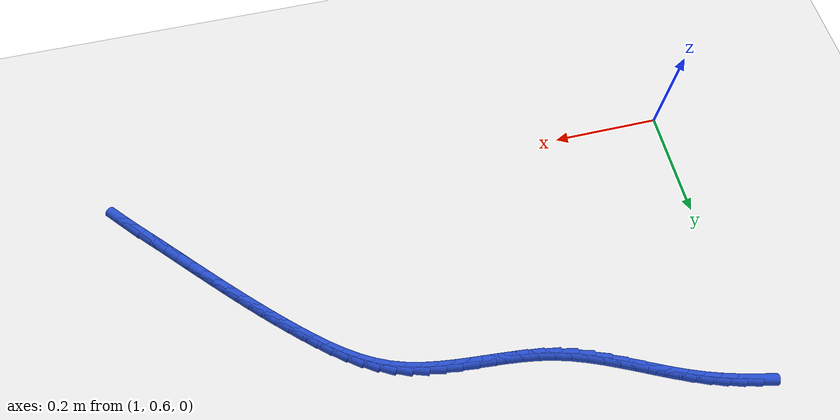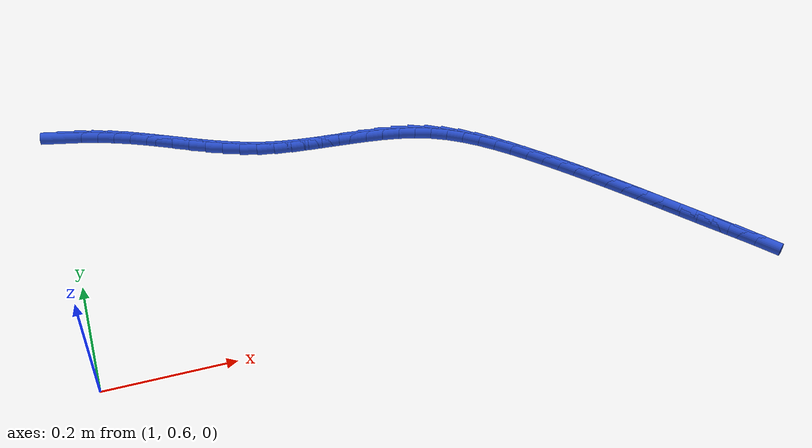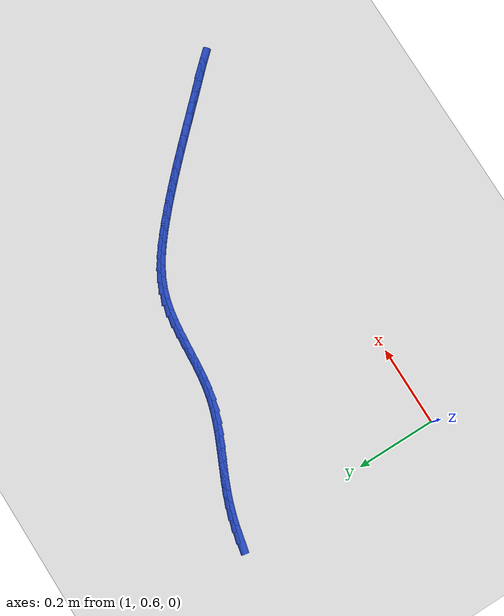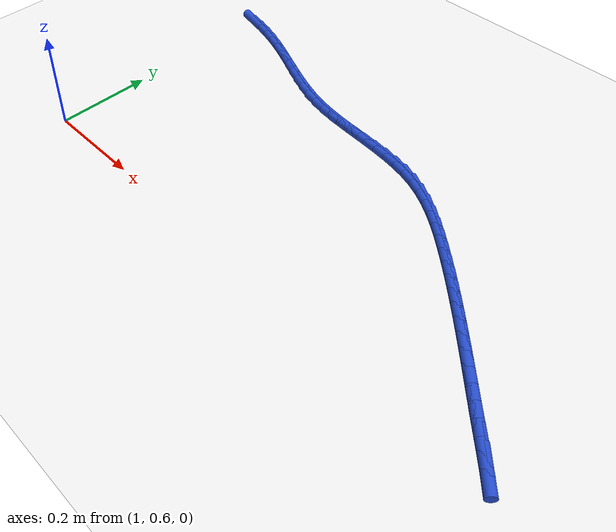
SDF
<sdf version="1.6">
 <world name="default">
  <model name="ground_plane">
   <static>1</static>
   <link name="link">
    <collision name="collision">
     <geometry><plane><normal>0 0 1</normal><size>100 100</size></plane></geometry>
     <surface><friction><ode><mu>100</mu><mu2>50</mu2></ode></friction></surface>
    </collision>
    <visual name="visual">
     <cast_shadows>0</cast_shadows>
     <geometry><plane><normal>0 0 1</normal><size>100 100</size></plane></geometry>
     <material>
      <script><uri>file://media/materials/scripts/gazebo.material</uri><name>Gazebo/WhiteGlow</name></script>
     </material>
    </visual>
   </link>
  </model>
  <model name="line">
   <link name="link_61">
    <pose>1.0137318240884738 1.1255448028093875 0.01 0 1.57 -0.2215263073344703</pose>
    <collision name="collision">
     <geometry><cylinder><radius>0.01</radius><length>0.08</length></cylinder></geometry>
    </collision>
    <visual name="visual">
     <material>
      <script><name>Gazebo/Blue</name><uri>file://media/materials/scripts/gazebo.material</uri></script>
     </material>
     <geometry><cylinder><radius>0.01</radius><length>0.08</length></cylinder></geometry>
    </visual>
   </link>
   <link name="link_62">
    <pose>1.0408444886149748 1.119438417977469 0.01 0 1.57 -0.26877016621185135</pose>
    <collision name="collision">
     <geometry><cylinder><radius>0.01</radius><length>0.08</length></cylinder></geometry>
    </collision>
    <visual name="visual">
     <material>
      <script><name>Gazebo/Blue</name><uri>file://media/materials/scripts/gazebo.material</uri></script>
     </material>
     <geometry><cylinder><radius>0.01</radius><length>0.08</length></cylinder></geometry>
    </visual>
   </link>
   <link name="link_63">
    <pose>1.0675674525722323 1.1120779903524673 0.01 0 1.57 -0.31479889620635837</pose>
    <collision name="collision">
     <geometry><cylinder><radius>0.01</radius><length>0.08</length></cylinder></geometry>
    </collision>
    <visual name="visual">
     <material>
      <script><name>Gazebo/Blue</name><uri>file://media/materials/scripts/gazebo.material</uri></script>
     </material>
     <geometry><cylinder><radius>0.01</radius><length>0.08</length></cylinder></geometry>
    </visual>
   </link>
   <link name="link_64">
    <pose>1.0939369457991517 1.1034913713339898 0.01 0 1.57 -0.35920142715494563</pose>
    <collision name="collision">
     <geometry><cylinder><radius>0.01</radius><length>0.08</length></cylinder></geometry>
    </collision>
    <visual name="visual">
     <material>
      <script><name>Gazebo/Blue</name><uri>file://media/materials/scripts/gazebo.material</uri></script>
     </material>
     <geometry><cylinder><radius>0.01</radius><length>0.08</length></cylinder></geometry>
    </visual>
   </link>
   <link name="link_65">
    <pose>1.1199896726734568 1.0937087961470224 0.01 0 1.57 -0.39693983732204374</pose>
    <collision name="collision">
     <geometry><cylinder><radius>0.01</radius><length>0.08</length></cylinder></geometry>
    </collision>
    <visual name="visual">
     <material>
      <script><name>Gazebo/Blue</name><uri>file://media/materials/scripts/gazebo.material</uri></script>
     </material>
     <geometry><cylinder><radius>0.01</radius><length>0.08</length></cylinder></geometry>
    </visual>
   </link>
   <link name="link_66">
    <pose>1.1457889119491418 1.0828939952546732 0.01 0 1.57 -0.420892536509313</pose>
    <collision name="collision">
     <geometry><cylinder><radius>0.01</radius><length>0.08</length></cylinder></geometry>
    </collision>
    <visual name="visual">
     <material>
      <script><name>Gazebo/Blue</name><uri>file://media/materials/scripts/gazebo.material</uri></script>
     </material>
     <geometry><cylinder><radius>0.01</radius><length>0.08</length></cylinder></geometry>
    </visual>
   </link>
   <link name="link_67">
    <pose>1.1714380768957648 1.0714123131356583 0.01 0 1.57 -0.430745317962416</pose>
    <collision name="collision">
     <geometry><cylinder><radius>0.01</radius><length>0.08</length></cylinder></geometry>
    </collision>
    <visual name="visual">
     <material>
      <script><name>Gazebo/Blue</name><uri>file://media/materials/scripts/gazebo.material</uri></script>
     </material>
     <geometry><cylinder><radius>0.01</radius><length>0.08</length></cylinder></geometry>
    </visual>
   </link>
   <link name="link_68">
    <pose>1.197043912701138 1.0596458320169777 0.01 0 1.57 -0.42667127711675795</pose>
    <collision name="collision">
     <geometry><cylinder><radius>0.01</radius><length>0.08</length></cylinder></geometry>
    </collision>
    <visual name="visual">
     <material>
      <script><name>Gazebo/Blue</name><uri>file://media/materials/scripts/gazebo.material</uri></script>
     </material>
     <geometry><cylinder><radius>0.01</radius><length>0.08</length></cylinder></geometry>
    </visual>
   </link>
   <link name="link_69">
    <pose>1.2227131645530749 1.047976634125632 0.01 0 1.57 -0.4086716947445242</pose>
    <collision name="collision">
     <geometry><cylinder><radius>0.01</radius><length>0.08</length></cylinder></geometry>
    </collision>
    <visual name="visual">
     <material>
      <script><name>Gazebo/Blue</name><uri>file://media/materials/scripts/gazebo.material</uri></script>
     </material>
     <geometry><cylinder><radius>0.01</radius><length>0.08</length></cylinder></geometry>
    </visual>
   </link>
   <link name="link_70">
    <pose>1.248552577639388 1.0367868016886217 0.01 0 1.57 -0.3766005412703607</pose>
    <collision name="collision">
     <geometry><cylinder><radius>0.01</radius><length>0.08</length></cylinder></geometry>
    </collision>
    <visual name="visual">
     <material>
      <script><name>Gazebo/Blue</name><uri>file://media/materials/scripts/gazebo.material</uri></script>
     </material>
     <geometry><cylinder><radius>0.01</radius><length>0.08</length></cylinder></geometry>
    </visual>
   </link>
   <link name="link_71">
    <pose>1.2746688971478892 1.026458416932946 0.01 0 1.57 -0.3302686686060403</pose>
    <collision name="collision">
     <geometry><cylinder><radius>0.01</radius><length>0.08</length></cylinder></geometry>
    </collision>
    <visual name="visual">
     <material>
      <script><name>Gazebo/Blue</name><uri>file://media/materials/scripts/gazebo.material</uri></script>
     </material>
     <geometry><cylinder><radius>0.01</radius><length>0.08</length></cylinder></geometry>
    </visual>
   </link>
   <link name="link_72">
    <pose>1.301168868266392 1.017373562085606 0.01 0 1.57 -0.26963650728713723</pose>
    <collision name="collision">
     <geometry><cylinder><radius>0.01</radius><length>0.08</length></cylinder></geometry>
    </collision>
    <visual name="visual">
     <material>
      <script><name>Gazebo/Blue</name><uri>file://media/materials/scripts/gazebo.material</uri></script>
     </material>
     <geometry><cylinder><radius>0.01</radius><length>0.08</length></cylinder></geometry>
    </visual>
   </link>
   <link name="link_73">
    <pose>1.3281592361827086 1.0099143193736018 0.01 0 1.57 -0.20021347893387959</pose>
    <collision name="collision">
     <geometry><cylinder><radius>0.01</radius><length>0.08</length></cylinder></geometry>
    </collision>
    <visual name="visual">
     <material>
      <script><name>Gazebo/Blue</name><uri>file://media/materials/scripts/gazebo.material</uri></script>
     </material>
     <geometry><cylinder><radius>0.01</radius><length>0.08</length></cylinder></geometry>
    </visual>
   </link>
   <link name="link_74">
    <pose>1.3557046515025295 1.004324464992871 0.01 0 1.57 -0.14340314209981983</pose>
    <collision name="collision">
     <geometry><cylinder><radius>0.01</radius><length>0.08</length></cylinder></geometry>
    </collision>
    <visual name="visual">
     <material>
      <script><name>Gazebo/Blue</name><uri>file://media/materials/scripts/gazebo.material</uri></script>
     </material>
     <geometry><cylinder><radius>0.01</radius><length>0.08</length></cylinder></geometry>
    </visual>
   </link>
   <link name="link_75">
    <pose>1.3836976970121337 1.0002824288174226 0.01 0 1.57 -0.1042615870564046</pose>
    <collision name="collision">
     <geometry><cylinder><radius>0.01</radius><length>0.08</length></cylinder></geometry>
    </collision>
    <visual name="visual">
     <material>
      <script><name>Gazebo/Blue</name><uri>file://media/materials/scripts/gazebo.material</uri></script>
     </material>
     <geometry><cylinder><radius>0.01</radius><length>0.08</length></cylinder></geometry>
    </visual>
   </link>
   <link name="link_76">
    <pose>1.411986996048947 0.9973222074808779 0.01 0 1.57 -0.08226434981564956</pose>
    <collision name="collision">
     <geometry><cylinder><radius>0.01</radius><length>0.08</length></cylinder></geometry>
    </collision>
    <visual name="visual">
     <material>
      <script><name>Gazebo/Blue</name><uri>file://media/materials/scripts/gazebo.material</uri></script>
     </material>
     <geometry><cylinder><radius>0.01</radius><length>0.08</length></cylinder></geometry>
    </visual>
   </link>
   <link name="link_77">
    <pose>1.4404211719341693 0.9949777975635512 0.01 0 1.57 -0.07704666643448888</pose>
    <collision name="collision">
     <geometry><cylinder><radius>0.01</radius><length>0.08</length></cylinder></geometry>
    </collision>
    <visual name="visual">
     <material>
      <script><name>Gazebo/Blue</name><uri>file://media/materials/scripts/gazebo.material</uri></script>
     </material>
     <geometry><cylinder><radius>0.01</radius><length>0.08</length></cylinder></geometry>
    </visual>
   </link>
   <link name="link_78">
    <pose>1.4688488479890012 0.9927831956457573 0.01 0 1.57 -0.08858310139092127</pose>
    <collision name="collision">
     <geometry><cylinder><radius>0.01</radius><length>0.08</length></cylinder></geometry>
    </collision>
    <visual name="visual">
     <material>
      <script><name>Gazebo/Blue</name><uri>file://media/materials/scripts/gazebo.material</uri></script>
     </material>
     <geometry><cylinder><radius>0.01</radius><length>0.08</length></cylinder></geometry>
    </visual>
   </link>
   <link name="link_79">
    <pose>1.4971186475346436 0.9902723983078104 0.01 0 1.57 -0.1172329205561936</pose>
    <collision name="collision">
     <geometry><cylinder><radius>0.01</radius><length>0.08</length></cylinder></geometry>
    </collision>
    <visual name="visual">
     <material>
      <script><name>Gazebo/Blue</name><uri>file://media/materials/scripts/gazebo.material</uri></script>
     </material>
     <geometry><cylinder><radius>0.01</radius><length>0.08</length></cylinder></geometry>
    </visual>
   </link>
   <link name="link_80">
    <pose>1.525079193892298 0.9869794021300259 0.01 0 1.57 -0.16365802836264334</pose>
    <collision name="collision">
     <geometry><cylinder><radius>0.01</radius><length>0.08</length></cylinder></geometry>
    </collision>
    <visual name="visual">
     <material>
      <script><name>Gazebo/Blue</name><uri>file://media/materials/scripts/gazebo.material</uri></script>
     </material>
     <geometry><cylinder><radius>0.01</radius><length>0.08</length></cylinder></geometry>
    </visual>
   </link>
   <link name="link_81">
    <pose>1.5525791103831634 0.9824382036927174 0.01 0 1.57 -0.2285813809524016</pose>
    <collision name="collision">
     <geometry><cylinder><radius>0.01</radius><length>0.08</length></cylinder></geometry>
    </collision>
    <visual name="visual">
     <material>
      <script><name>Gazebo/Blue</name><uri>file://media/materials/scripts/gazebo.material</uri></script>
     </material>
     <geometry><cylinder><radius>0.01</radius><length>0.08</length></cylinder></geometry>
    </visual>
   </link>
   <link name="link_82">
    <pose>1.5794670203284418 0.9761827995761999 0.01 0 1.57 -0.3123314726011857</pose>
    <collision name="collision">
     <geometry><cylinder><radius>0.01</radius><length>0.08</length></cylinder></geometry>
    </collision>
    <visual name="visual">
     <material>
      <script><name>Gazebo/Blue</name><uri>file://media/materials/scripts/gazebo.material</uri></script>
     </material>
     <geometry><cylinder><radius>0.01</radius><length>0.08</length></cylinder></geometry>
    </visual>
   </link>
   <link name="link_83">
    <pose>1.6055915470493338 0.967747186360788 0.01 0 1.57 -0.4108900697118907</pose>
    <collision name="collision">
     <geometry><cylinder><radius>0.01</radius><length>0.08</length></cylinder></geometry>
    </collision>
    <visual name="visual">
     <material>
      <script><name>Gazebo/Blue</name><uri>file://media/materials/scripts/gazebo.material</uri></script>
     </material>
     <geometry><cylinder><radius>0.01</radius><length>0.08</length></cylinder></geometry>
    </visual>
   </link>
   <link name="link_84">
    <pose>1.6308242399019675 0.956753558900686 0.01 0 1.57 -0.5016200299486727</pose>
    <collision name="collision">
     <geometry><cylinder><radius>0.01</radius><length>0.08</length></cylinder></geometry>
    </collision>
    <visual name="visual">
     <material>
      <script><name>Gazebo/Blue</name><uri>file://media/materials/scripts/gazebo.material</uri></script>
     </material>
     <geometry><cylinder><radius>0.01</radius><length>0.08</length></cylinder></geometry>
    </visual>
   </link>
   <link name="link_85">
    <pose>1.6551847936858874 0.9433940393155402 0.01 0 1.57 -0.5760219329005849</pose>
    <collision name="collision">
     <geometry><cylinder><radius>0.01</radius><length>0.08</length></cylinder></geometry>
    </collision>
    <visual name="visual">
     <material>
      <script><name>Gazebo/Blue</name><uri>file://media/materials/scripts/gazebo.material</uri></script>
     </material>
     <geometry><cylinder><radius>0.01</radius><length>0.08</length></cylinder></geometry>
    </visual>
   </link>
   <link name="link_86">
    <pose>1.6787517990551546 0.9280873267464477 0.01 0 1.57 -0.6349180226319622</pose>
    <collision name="collision">
     <geometry><cylinder><radius>0.01</radius><length>0.08</length></cylinder></geometry>
    </collision>
    <visual name="visual">
     <material>
      <script><name>Gazebo/Blue</name><uri>file://media/materials/scripts/gazebo.material</uri></script>
     </material>
     <geometry><cylinder><radius>0.01</radius><length>0.08</length></cylinder></geometry>
    </visual>
   </link>
   <link name="link_87">
    <pose>1.7016039968390235 0.9112526980703763 0.01 0 1.57 -0.6793993611296293</pose>
    <collision name="collision">
     <geometry><cylinder><radius>0.01</radius><length>0.08</length></cylinder></geometry>
    </collision>
    <visual name="visual">
     <material>
      <script><name>Gazebo/Blue</name><uri>file://media/materials/scripts/gazebo.material</uri></script>
     </material>
     <geometry><cylinder><radius>0.01</radius><length>0.08</length></cylinder></geometry>
    </visual>
   </link>
   <link name="link_88">
    <pose>1.7238201278667469 0.8933094301642939 0.01 0 1.57 -0.7104317668136934</pose>
    <collision name="collision">
     <geometry><cylinder><radius>0.01</radius><length>0.08</length></cylinder></geometry>
    </collision>
    <visual name="visual">
     <material>
      <script><name>Gazebo/Blue</name><uri>file://media/materials/scripts/gazebo.material</uri></script>
     </material>
     <geometry><cylinder><radius>0.01</radius><length>0.08</length></cylinder></geometry>
    </visual>
   </link>
   <link name="link_89">
    <pose>1.7454789329675786 0.8746767999051679 0.01 0 1.57 -0.7296650820612394</pose>
    <collision name="collision">
     <geometry><cylinder><radius>0.01</radius><length>0.08</length></cylinder></geometry>
    </collision>
    <visual name="visual">
     <material>
      <script><name>Gazebo/Blue</name><uri>file://media/materials/scripts/gazebo.material</uri></script>
     </material>
     <geometry><cylinder><radius>0.01</radius><length>0.08</length></cylinder></geometry>
    </visual>
   </link>
   <link name="link_90">
    <pose>1.7666571774927593 0.8557367873904757 0.01 0 1.57 -0.7443943366551953</pose>
    <collision name="collision">
     <geometry><cylinder><radius>0.01</radius><length>0.08</length></cylinder></geometry>
    </collision>
    <visual name="visual">
     <material>
      <script><name>Gazebo/Blue</name><uri>file://media/materials/scripts/gazebo.material</uri></script>
     </material>
     <geometry><cylinder><radius>0.01</radius><length>0.08</length></cylinder></geometry>
    </visual>
   </link>
   <link name="link_91">
    <pose>1.7874179106400854 0.8366124134445789 0.01 0 1.57 -0.7575714498391418</pose>
    <collision name="collision">
     <geometry><cylinder><radius>0.01</radius><length>0.08</length></cylinder></geometry>
    </collision>
    <visual name="visual">
     <material>
      <script><name>Gazebo/Blue</name><uri>file://media/materials/scripts/gazebo.material</uri></script>
     </material>
     <geometry><cylinder><radius>0.01</radius><length>0.08</length></cylinder></geometry>
    </visual>
   </link>
   <link name="link_92">
    <pose>1.8078183635787808 0.8173168552351336 0.01 0 1.57 -0.7691316414390849</pose>
    <collision name="collision">
     <geometry><cylinder><radius>0.01</radius><length>0.08</length></cylinder></geometry>
    </collision>
    <visual name="visual">
     <material>
      <script><name>Gazebo/Blue</name><uri>file://media/materials/scripts/gazebo.material</uri></script>
     </material>
     <geometry><cylinder><radius>0.01</radius><length>0.08</length></cylinder></geometry>
    </visual>
   </link>
   <link name="link_93">
    <pose>1.8279157464012625 0.797862892002296 0.01 0 1.57 -0.7790122759932302</pose>
    <collision name="collision">
     <geometry><cylinder><radius>0.01</radius><length>0.08</length></cylinder></geometry>
    </collision>
    <visual name="visual">
     <material>
      <script><name>Gazebo/Blue</name><uri>file://media/materials/scripts/gazebo.material</uri></script>
     </material>
     <geometry><cylinder><radius>0.01</radius><length>0.08</length></cylinder></geometry>
    </visual>
   </link>
   <link name="link_94">
    <pose>1.8477672691999485 0.7782633029862224 0.01 0 1.57 -0.7871639223755819</pose>
    <collision name="collision">
     <geometry><cylinder><radius>0.01</radius><length>0.08</length></cylinder></geometry>
    </collision>
    <visual name="visual">
     <material>
      <script><name>Gazebo/Blue</name><uri>file://media/materials/scripts/gazebo.material</uri></script>
     </material>
     <geometry><cylinder><radius>0.01</radius><length>0.08</length></cylinder></geometry>
    </visual>
   </link>
   <link name="link_95">
    <pose>1.8674301420672548 0.7585308674270691 0.01 0 1.57 -0.7935502872008002</pose>
    <collision name="collision">
     <geometry><cylinder><radius>0.01</radius><length>0.08</length></cylinder></geometry>
    </collision>
    <visual name="visual">
     <material>
      <script><name>Gazebo/Blue</name><uri>file://media/materials/scripts/gazebo.material</uri></script>
     </material>
     <geometry><cylinder><radius>0.01</radius><length>0.08</length></cylinder></geometry>
    </visual>
   </link>
   <link name="link_96">
    <pose>1.886961575095599 0.7386783645649923 0.01 0 1.57 -0.7981480044133765</pose>
    <collision name="collision">
     <geometry><cylinder><radius>0.01</radius><length>0.08</length></cylinder></geometry>
    </collision>
    <visual name="visual">
     <material>
      <script><name>Gazebo/Blue</name><uri>file://media/materials/scripts/gazebo.material</uri></script>
     </material>
     <geometry><cylinder><radius>0.01</radius><length>0.08</length></cylinder></geometry>
    </visual>
   </link>
   <link name="link_97">
    <pose>1.9064187783773987 0.7187185736401482 0.01 0 1.57 -0.8009463255694241</pose>
    <collision name="collision">
     <geometry><cylinder><radius>0.01</radius><length>0.08</length></cylinder></geometry>
    </collision>
    <visual name="visual">
     <material>
      <script><name>Gazebo/Blue</name><uri>file://media/materials/scripts/gazebo.material</uri></script>
     </material>
     <geometry><cylinder><radius>0.01</radius><length>0.08</length></cylinder></geometry>
    </visual>
   </link>
   <link name="link_98">
    <pose>1.92585896200507 0.6986642738926931 0.01 0 1.57 -0.801946748201354</pose>
    <collision name="collision">
     <geometry><cylinder><radius>0.01</radius><length>0.08</length></cylinder></geometry>
    </collision>
    <visual name="visual">
     <material>
      <script><name>Gazebo/Blue</name><uri>file://media/materials/scripts/gazebo.material</uri></script>
     </material>
     <geometry><cylinder><radius>0.01</radius><length>0.08</length></cylinder></geometry>
    </visual>
   </link>
   <link name="link_99">
    <pose>1.94533933607103 0.6785282445627832 0.01 0 1.57 -0.8011626103041968</pose>
    <collision name="collision">
     <geometry><cylinder><radius>0.01</radius><length>0.08</length></cylinder></geometry>
    </collision>
    <visual name="visual">
     <material>
      <script><name>Gazebo/Blue</name><uri>file://media/materials/scripts/gazebo.material</uri></script>
     </material>
     <geometry><cylinder><radius>0.01</radius><length>0.08</length></cylinder></geometry>
    </visual>
   </link>
   <link name="link_100">
    <pose>1.9649171106676961 0.6583232648905747 0.01 0 1.57 -0.7986186685333049</pose>
    <collision name="collision">
     <geometry><cylinder><radius>0.01</radius><length>0.08</length></cylinder></geometry>
    </collision>
    <visual name="visual">
     <material>
      <script><name>Gazebo/Blue</name><uri>file://media/materials/scripts/gazebo.material</uri></script>
     </material>
     <geometry><cylinder><radius>0.01</radius><length>0.08</length></cylinder></geometry>
    </visual>
   </link>
   <link name="link_101">
    <pose>1.9846494958874854 0.6380621141162242 0.01 0 1.57 -0.7950360294420299</pose>
    <collision name="collision">
     <geometry><cylinder><radius>0.01</radius><length>0.08</length></cylinder></geometry>
    </collision>
    <visual name="visual">
     <material>
      <script><name>Gazebo/Blue</name><uri>file://media/materials/scripts/gazebo.material</uri></script>
     </material>
     <geometry><cylinder><radius>0.01</radius><length>0.08</length></cylinder></geometry>
    </visual>
   </link>
   <link name="link_102">
    <pose>2.004573959998709 0.6177498417207652 0.01 0 1.57 -0.8014611791359979</pose>
    <collision name="collision">
     <geometry><cylinder><radius>0.01</radius><length>0.08</length></cylinder></geometry>
    </collision>
    <visual name="visual">
     <material>
      <script><name>Gazebo/Blue</name><uri>file://media/materials/scripts/gazebo.material</uri></script>
     </material>
     <geometry><cylinder><radius>0.01</radius><length>0.08</length></cylinder></geometry>
    </visual>
   </link>
   <link name="link_103">
    <pose>2.0244093614316863 0.597266747957985 0.01 0 1.57 -0.8269647117988213</pose>
    <collision name="collision">
     <geometry><cylinder><radius>0.01</radius><length>0.08</length></cylinder></geometry>
    </collision>
    <visual name="visual">
     <material>
      <script><name>Gazebo/Blue</name><uri>file://media/materials/scripts/gazebo.material</uri></script>
     </material>
     <geometry><cylinder><radius>0.01</radius><length>0.08</length></cylinder></geometry>
    </visual>
   </link>
  </model>
 </world>
</sdf>
